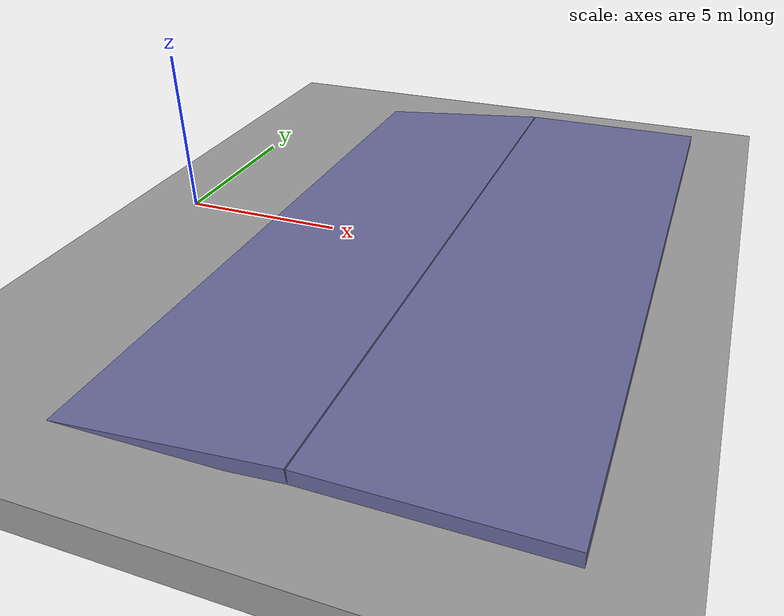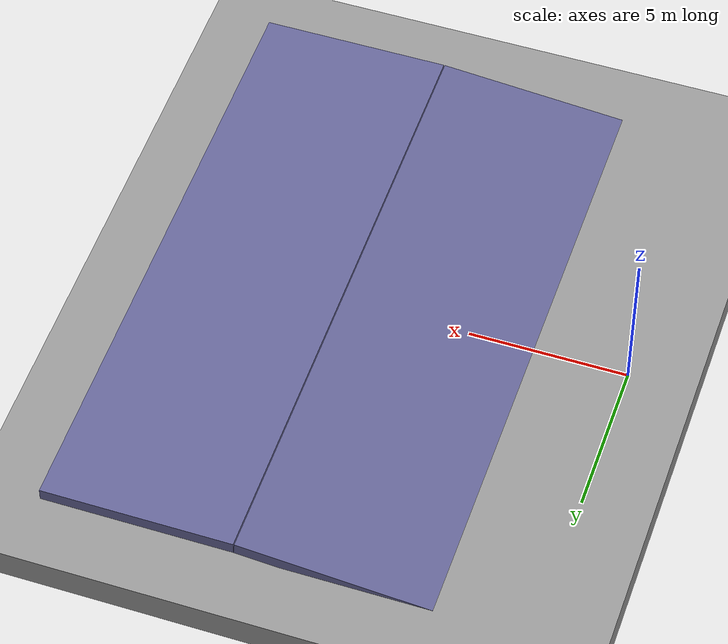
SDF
<?xml version="1.0" ?>
<sdf version="1.9">
  <world name="Seongdong_gu">
    <!-- 운용 월드(Seongdong_gu_aligned)와 같은 물리 설정을 쓴다.
         기본 충돌 검출기로는 Go2 가 RL 진입 직후 옆으로 넘어졌다
         (IMU 기울기 94도). 발 접촉이 많은 4족은 검출기 영향을 크게 받는다. -->
    <physics name="1ms" type="ignored">
      <dart>
        <collision_detector>bullet</collision_detector>
      </dart>
    </physics>
    <plugin filename="gz-sim-physics-system" name="gz::sim::systems::Physics"/>
    <plugin filename="gz-sim-user-commands-system"
            name="gz::sim::systems::UserCommands"/>
    <plugin filename="gz-sim-scene-broadcaster-system"
            name="gz::sim::systems::SceneBroadcaster"/>
    <plugin filename="gz-sim-sensors-system" name="gz::sim::systems::Sensors">
      <render_engine>ogre2</render_engine>
    </plugin>
    <plugin filename="gz-sim-imu-system" name="gz::sim::systems::Imu"/>
    <plugin filename="gz-sim-forcetorque-system"
            name="gz::sim::systems::ForceTorque"/>
    <plugin filename="gz-sim-contact-system" name="gz::sim::systems::Contact"/>
    <light type="directional" name="sun">
      <cast_shadows>true</cast_shadows>
      <pose>0 0 10 0 0 0</pose>
      <diffuse>0.8 0.8 0.8 1</diffuse>
      <specular>0.2 0.2 0.2 1</specular>
      <direction>-0.5 0.1 -0.9</direction>
    </light>
    <!-- 지면은 무한 plane 이 아니라 큰 박스를 쓴다. plane 은 4족 발 접촉에서
         불안정했다(RL 진입 직후 전복). 박스는 접촉 판정이 단순하고 안정적이다. -->
    <model name="ground">
      <static>true</static>
      <pose>0 0 -0.5 0 0 0</pose>
      <link name="link">
        <collision name="collision">
          <geometry><box><size>200 60 1</size></box></geometry>
          <surface><friction><ode><mu>1.0</mu><mu2>1.0</mu2></ode></friction></surface>
        </collision>
        <visual name="visual">
          <geometry><box><size>200 60 1</size></box></geometry>
          <material><ambient>0.5 0.5 0.5 1</ambient><diffuse>0.6 0.6 0.6 1</diffuse></material>
        </visual>
      </link>
    </model>
    <model name="ramp">
      <static>true</static>
      <pose>5.982568851450468 0 0.06322705095942291 0 -0.08726646259971647 0</pose>
      <link name="link">
        <collision name="collision">
          <geometry><box><size>6.022919025260085 20.0 0.4</size></box></geometry>
          <surface><friction><ode><mu>1.0</mu><mu2>1.0</mu2></ode></friction></surface>
        </collision>
        <visual name="visual">
          <geometry><box><size>6.022919025260085 20.0 0.4</size></box></geometry>
          <material><ambient>0.3 0.3 0.4 1</ambient><diffuse>0.4 0.4 0.6 1</diffuse></material>
        </visual>
      </link>
    </model>
    <model name="summit">
      <static>true</static>
      <pose>12.0 0 0.32493198115554406 0 0 0</pose>
      <link name="link">
        <collision name="collision">
          <geometry><box><size>6.0 20.0 0.4</size></box></geometry>
          <surface><friction><ode><mu>1.0</mu><mu2>1.0</mu2></ode></friction></surface>
        </collision>
        <visual name="visual">
          <geometry><box><size>6.0 20.0 0.4</size></box></geometry>
          <material><ambient>0.3 0.3 0.4 1</ambient><diffuse>0.4 0.4 0.6 1</diffuse></material>
        </visual>
      </link>
    </model>
  </world>
</sdf>
